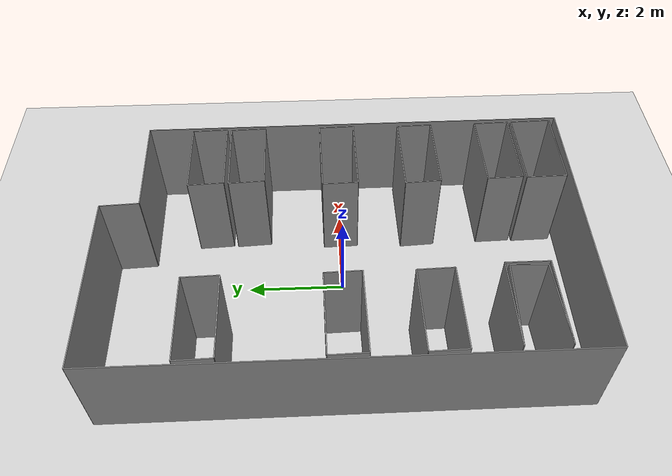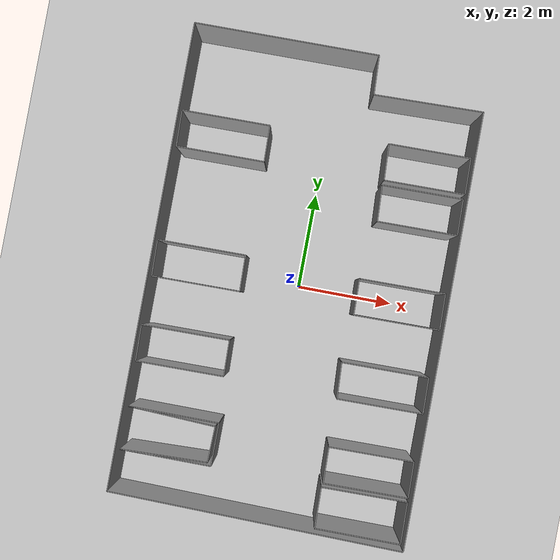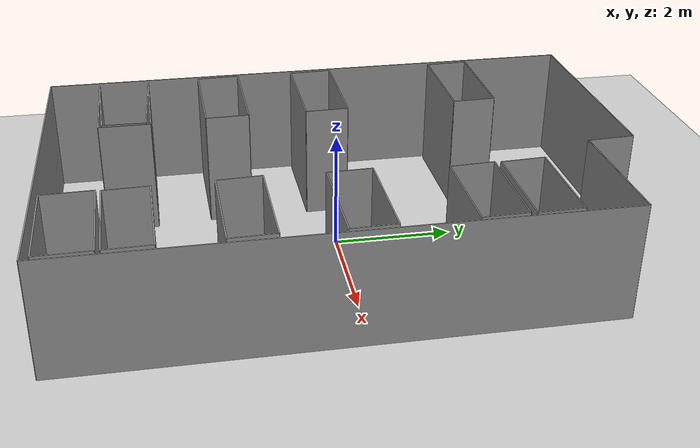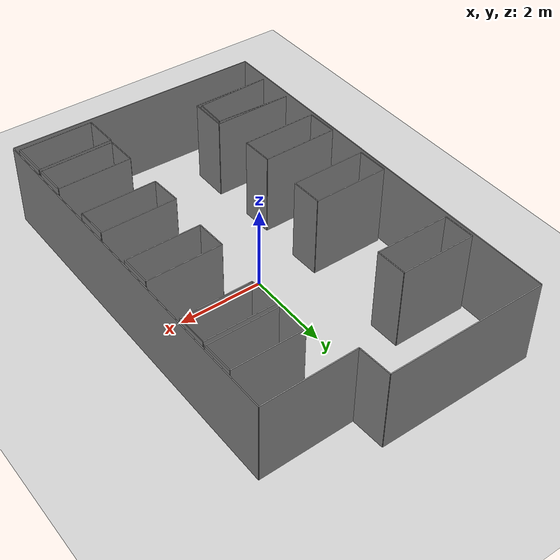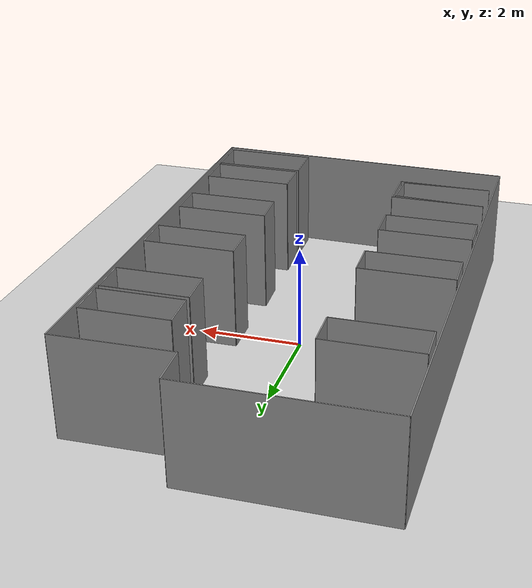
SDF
<sdf version="1.6">
 <world name="myagv_hand_drawn_world">
  <physics name="default_physics" default="0" type="ode">
   <max_step_size>0.001</max_step_size>
   <real_time_factor>1</real_time_factor>
   <real_time_update_rate>1000</real_time_update_rate>
   <ode><solver><iters>150</iters></solver></ode>
  </physics>
  <light type="directional" name="sun">
   <pose>0 0 10 0 0 0</pose>
   <diffuse>0.8 0.8 0.8 1</diffuse>
   <specular>0.2 0.2 0.2 1</specular>
   <attenuation>
    <range>1000</range>
    <constant>0.9</constant>
    <linear>0.01</linear>
    <quadratic>0.001</quadratic>
   </attenuation>
   <direction>-0.5 0.1 -0.9</direction>
  </light>
  <model name="ground_plane">
   <static>true</static>
   <link name="link">
    <collision name="collision">
     <geometry><plane><normal>0 0 1</normal><size>40 40</size></plane></geometry>
     <surface><friction><ode><mu>1.0</mu><mu2>1.0</mu2></ode></friction></surface>
    </collision>
    <visual name="visual">
     <geometry><plane><normal>0 0 1</normal><size>40 40</size></plane></geometry>
     <material><ambient>0.8 0.8 0.8 1</ambient><diffuse>0.8 0.8 0.8 1</diffuse></material>
    </visual>
   </link>
  </model>
  <model name="wall_0">
   <static>true</static>
   <pose>-2.030 -3.050 1.000 0 0 -0.0444</pose>
   <link name="link">
    <collision name="collision"><geometry><box><size>1.802 0.020 2.000</size></box></geometry></collision>
    <visual name="visual">
     <geometry><box><size>1.802 0.020 2.000</size></box></geometry>
     <material><ambient>0.6 0.6 0.6 1</ambient><diffuse>0.6 0.6 0.6 1</diffuse></material>
    </visual>
   </link>
  </model>
  <model name="wall_1">
   <static>true</static>
   <pose>-1.140 -3.460 1.000 0 0 -1.5978</pose>
   <link name="link">
    <collision name="collision"><geometry><box><size>0.740 0.020 2.000</size></box></geometry></collision>
    <visual name="visual">
     <geometry><box><size>0.740 0.020 2.000</size></box></geometry>
     <material><ambient>0.6 0.6 0.6 1</ambient><diffuse>0.6 0.6 0.6 1</diffuse></material>
    </visual>
   </link>
  </model>
  <model name="wall_2">
   <static>true</static>
   <pose>-2.040 -3.860 1.000 0 0 -3.1079</pose>
   <link name="link">
    <collision name="collision"><geometry><box><size>1.781 0.020 2.000</size></box></geometry></collision>
    <visual name="visual">
     <geometry><box><size>1.781 0.020 2.000</size></box></geometry>
     <material><ambient>0.6 0.6 0.6 1</ambient><diffuse>0.6 0.6 0.6 1</diffuse></material>
    </visual>
   </link>
  </model>
  <model name="wall_3">
   <static>true</static>
   <pose>-2.000 -3.890 1.000 0 0 0.0000</pose>
   <link name="link">
    <collision name="collision"><geometry><box><size>1.860 0.020 2.000</size></box></geometry></collision>
    <visual name="visual">
     <geometry><box><size>1.860 0.020 2.000</size></box></geometry>
     <material><ambient>0.6 0.6 0.6 1</ambient><diffuse>0.6 0.6 0.6 1</diffuse></material>
    </visual>
   </link>
  </model>
  <model name="wall_4">
   <static>true</static>
   <pose>-1.070 -3.450 1.000 0 0 1.5708</pose>
   <link name="link">
    <collision name="collision"><geometry><box><size>0.880 0.020 2.000</size></box></geometry></collision>
    <visual name="visual">
     <geometry><box><size>0.880 0.020 2.000</size></box></geometry>
     <material><ambient>0.6 0.6 0.6 1</ambient><diffuse>0.6 0.6 0.6 1</diffuse></material>
    </visual>
   </link>
  </model>
  <model name="wall_5">
   <static>true</static>
   <pose>-2.000 -3.010 1.000 0 0 3.1416</pose>
   <link name="link">
    <collision name="collision"><geometry><box><size>1.860 0.020 2.000</size></box></geometry></collision>
    <visual name="visual">
     <geometry><box><size>1.860 0.020 2.000</size></box></geometry>
     <material><ambient>0.6 0.6 0.6 1</ambient><diffuse>0.6 0.6 0.6 1</diffuse></material>
    </visual>
   </link>
  </model>
  <model name="wall_6">
   <static>true</static>
   <pose>1.890 4.100 1.000 0 0 -3.1148</pose>
   <link name="link">
    <collision name="collision"><geometry><box><size>2.241 0.020 2.000</size></box></geometry></collision>
    <visual name="visual">
     <geometry><box><size>2.241 0.020 2.000</size></box></geometry>
     <material><ambient>0.6 0.6 0.6 1</ambient><diffuse>0.6 0.6 0.6 1</diffuse></material>
    </visual>
   </link>
  </model>
  <model name="wall_7">
   <static>true</static>
   <pose>0.750 4.470 1.000 0 0 1.6208</pose>
   <link name="link">
    <collision name="collision"><geometry><box><size>0.801 0.020 2.000</size></box></geometry></collision>
    <visual name="visual">
     <geometry><box><size>0.801 0.020 2.000</size></box></geometry>
     <material><ambient>0.6 0.6 0.6 1</ambient><diffuse>0.6 0.6 0.6 1</diffuse></material>
    </visual>
   </link>
  </model>
  <model name="wall_8">
   <static>true</static>
   <pose>-1.160 4.850 1.000 0 0 -3.1310</pose>
   <link name="link">
    <collision name="collision"><geometry><box><size>3.780 0.020 2.000</size></box></geometry></collision>
    <visual name="visual">
     <geometry><box><size>3.780 0.020 2.000</size></box></geometry>
     <material><ambient>0.6 0.6 0.6 1</ambient><diffuse>0.6 0.6 0.6 1</diffuse></material>
    </visual>
   </link>
  </model>
  <model name="wall_9">
   <static>true</static>
   <pose>-3.040 0.030 1.000 0 0 -1.5687</pose>
   <link name="link">
    <collision name="collision"><geometry><box><size>9.600 0.020 2.000</size></box></geometry></collision>
    <visual name="visual">
     <geometry><box><size>9.600 0.020 2.000</size></box></geometry>
     <material><ambient>0.6 0.6 0.6 1</ambient><diffuse>0.6 0.6 0.6 1</diffuse></material>
    </visual>
   </link>
  </model>
  <model name="wall_10">
   <static>true</static>
   <pose>0.010 -4.820 1.000 0 0 -0.0164</pose>
   <link name="link">
    <collision name="collision"><geometry><box><size>6.081 0.020 2.000</size></box></geometry></collision>
    <visual name="visual">
     <geometry><box><size>6.081 0.020 2.000</size></box></geometry>
     <material><ambient>0.6 0.6 0.6 1</ambient><diffuse>0.6 0.6 0.6 1</diffuse></material>
    </visual>
   </link>
  </model>
  <model name="wall_11">
   <static>true</static>
   <pose>3.030 -0.370 1.000 0 0 1.5752</pose>
   <link name="link">
    <collision name="collision"><geometry><box><size>9.000 0.020 2.000</size></box></geometry></collision>
    <visual name="visual">
     <geometry><box><size>9.000 0.020 2.000</size></box></geometry>
     <material><ambient>0.6 0.6 0.6 1</ambient><diffuse>0.6 0.6 0.6 1</diffuse></material>
    </visual>
   </link>
  </model>
  <model name="wall_12">
   <static>true</static>
   <pose>2.070 -3.880 1.000 0 0 0.0114</pose>
   <link name="link">
    <collision name="collision"><geometry><box><size>1.760 0.020 2.000</size></box></geometry></collision>
    <visual name="visual">
     <geometry><box><size>1.760 0.020 2.000</size></box></geometry>
     <material><ambient>0.6 0.6 0.6 1</ambient><diffuse>0.6 0.6 0.6 1</diffuse></material>
    </visual>
   </link>
  </model>
  <model name="wall_13">
   <static>true</static>
   <pose>2.960 -4.300 1.000 0 0 -1.5475</pose>
   <link name="link">
    <collision name="collision"><geometry><box><size>0.860 0.020 2.000</size></box></geometry></collision>
    <visual name="visual">
     <geometry><box><size>0.860 0.020 2.000</size></box></geometry>
     <material><ambient>0.6 0.6 0.6 1</ambient><diffuse>0.6 0.6 0.6 1</diffuse></material>
    </visual>
   </link>
  </model>
  <model name="wall_14">
   <static>true</static>
   <pose>2.090 -4.730 1.000 0 0 3.1416</pose>
   <link name="link">
    <collision name="collision"><geometry><box><size>1.760 0.020 2.000</size></box></geometry></collision>
    <visual name="visual">
     <geometry><box><size>1.760 0.020 2.000</size></box></geometry>
     <material><ambient>0.6 0.6 0.6 1</ambient><diffuse>0.6 0.6 0.6 1</diffuse></material>
    </visual>
   </link>
  </model>
  <model name="wall_15">
   <static>true</static>
   <pose>1.200 -4.310 1.000 0 0 1.5946</pose>
   <link name="link">
    <collision name="collision"><geometry><box><size>0.840 0.020 2.000</size></box></geometry></collision>
    <visual name="visual">
     <geometry><box><size>0.840 0.020 2.000</size></box></geometry>
     <material><ambient>0.6 0.6 0.6 1</ambient><diffuse>0.6 0.6 0.6 1</diffuse></material>
    </visual>
   </link>
  </model>
  <model name="wall_16">
   <static>true</static>
   <pose>2.060 -3.060 1.000 0 0 0.0115</pose>
   <link name="link">
    <collision name="collision"><geometry><box><size>1.740 0.020 2.000</size></box></geometry></collision>
    <visual name="visual">
     <geometry><box><size>1.740 0.020 2.000</size></box></geometry>
     <material><ambient>0.6 0.6 0.6 1</ambient><diffuse>0.6 0.6 0.6 1</diffuse></material>
    </visual>
   </link>
  </model>
  <model name="wall_17">
   <static>true</static>
   <pose>2.940 -3.420 1.000 0 0 -1.5438</pose>
   <link name="link">
    <collision name="collision"><geometry><box><size>0.740 0.020 2.000</size></box></geometry></collision>
    <visual name="visual">
     <geometry><box><size>0.740 0.020 2.000</size></box></geometry>
     <material><ambient>0.6 0.6 0.6 1</ambient><diffuse>0.6 0.6 0.6 1</diffuse></material>
    </visual>
   </link>
  </model>
  <model name="wall_18">
   <static>true</static>
   <pose>2.080 -3.800 1.000 0 0 -3.1301</pose>
   <link name="link">
    <collision name="collision"><geometry><box><size>1.740 0.020 2.000</size></box></geometry></collision>
    <visual name="visual">
     <geometry><box><size>1.740 0.020 2.000</size></box></geometry>
     <material><ambient>0.6 0.6 0.6 1</ambient><diffuse>0.6 0.6 0.6 1</diffuse></material>
    </visual>
   </link>
  </model>
  <model name="wall_19">
   <static>true</static>
   <pose>1.200 -3.440 1.000 0 0 1.5978</pose>
   <link name="link">
    <collision name="collision"><geometry><box><size>0.740 0.020 2.000</size></box></geometry></collision>
    <visual name="visual">
     <geometry><box><size>0.740 0.020 2.000</size></box></geometry>
     <material><ambient>0.6 0.6 0.6 1</ambient><diffuse>0.6 0.6 0.6 1</diffuse></material>
    </visual>
   </link>
  </model>
  <model name="wall_20">
   <static>true</static>
   <pose>2.020 -1.340 1.000 0 0 0.0112</pose>
   <link name="link">
    <collision name="collision"><geometry><box><size>1.780 0.020 2.000</size></box></geometry></collision>
    <visual name="visual">
     <geometry><box><size>1.780 0.020 2.000</size></box></geometry>
     <material><ambient>0.6 0.6 0.6 1</ambient><diffuse>0.6 0.6 0.6 1</diffuse></material>
    </visual>
   </link>
  </model>
  <model name="wall_21">
   <static>true</static>
   <pose>2.920 -1.700 1.000 0 0 -1.5438</pose>
   <link name="link">
    <collision name="collision"><geometry><box><size>0.740 0.020 2.000</size></box></geometry></collision>
    <visual name="visual">
     <geometry><box><size>0.740 0.020 2.000</size></box></geometry>
     <material><ambient>0.6 0.6 0.6 1</ambient><diffuse>0.6 0.6 0.6 1</diffuse></material>
    </visual>
   </link>
  </model>
  <model name="wall_22">
   <static>true</static>
   <pose>2.050 -2.080 1.000 0 0 -3.1302</pose>
   <link name="link">
    <collision name="collision"><geometry><box><size>1.760 0.020 2.000</size></box></geometry></collision>
    <visual name="visual">
     <geometry><box><size>1.760 0.020 2.000</size></box></geometry>
     <material><ambient>0.6 0.6 0.6 1</ambient><diffuse>0.6 0.6 0.6 1</diffuse></material>
    </visual>
   </link>
  </model>
  <model name="wall_23">
   <static>true</static>
   <pose>1.150 -1.720 1.000 0 0 1.6248</pose>
   <link name="link">
    <collision name="collision"><geometry><box><size>0.741 0.020 2.000</size></box></geometry></collision>
    <visual name="visual">
     <geometry><box><size>0.741 0.020 2.000</size></box></geometry>
     <material><ambient>0.6 0.6 0.6 1</ambient><diffuse>0.6 0.6 0.6 1</diffuse></material>
    </visual>
   </link>
  </model>
  <model name="wall_24">
   <static>true</static>
   <pose>-2.070 -1.340 1.000 0 0 0.0111</pose>
   <link name="link">
    <collision name="collision"><geometry><box><size>1.800 0.020 2.000</size></box></geometry></collision>
    <visual name="visual">
     <geometry><box><size>1.800 0.020 2.000</size></box></geometry>
     <material><ambient>0.6 0.6 0.6 1</ambient><diffuse>0.6 0.6 0.6 1</diffuse></material>
    </visual>
   </link>
  </model>
  <model name="wall_25">
   <static>true</static>
   <pose>-1.160 -1.700 1.000 0 0 -1.5438</pose>
   <link name="link">
    <collision name="collision"><geometry><box><size>0.740 0.020 2.000</size></box></geometry></collision>
    <visual name="visual">
     <geometry><box><size>0.740 0.020 2.000</size></box></geometry>
     <material><ambient>0.6 0.6 0.6 1</ambient><diffuse>0.6 0.6 0.6 1</diffuse></material>
    </visual>
   </link>
  </model>
  <model name="wall_26">
   <static>true</static>
   <pose>-2.050 -2.080 1.000 0 0 -3.1305</pose>
   <link name="link">
    <collision name="collision"><geometry><box><size>1.800 0.020 2.000</size></box></geometry></collision>
    <visual name="visual">
     <geometry><box><size>1.800 0.020 2.000</size></box></geometry>
     <material><ambient>0.6 0.6 0.6 1</ambient><diffuse>0.6 0.6 0.6 1</diffuse></material>
    </visual>
   </link>
  </model>
  <model name="wall_27">
   <static>true</static>
   <pose>-2.960 -1.720 1.000 0 0 1.5978</pose>
   <link name="link">
    <collision name="collision"><geometry><box><size>0.740 0.020 2.000</size></box></geometry></collision>
    <visual name="visual">
     <geometry><box><size>0.740 0.020 2.000</size></box></geometry>
     <material><ambient>0.6 0.6 0.6 1</ambient><diffuse>0.6 0.6 0.6 1</diffuse></material>
    </visual>
   </link>
  </model>
  <model name="wall_28">
   <static>true</static>
   <pose>2.050 0.380 1.000 0 0 0.0114</pose>
   <link name="link">
    <collision name="collision"><geometry><box><size>1.760 0.020 2.000</size></box></geometry></collision>
    <visual name="visual">
     <geometry><box><size>1.760 0.020 2.000</size></box></geometry>
     <material><ambient>0.6 0.6 0.6 1</ambient><diffuse>0.6 0.6 0.6 1</diffuse></material>
    </visual>
   </link>
  </model>
  <model name="wall_29">
   <static>true</static>
   <pose>2.940 0.020 1.000 0 0 -1.5438</pose>
   <link name="link">
    <collision name="collision"><geometry><box><size>0.740 0.020 2.000</size></box></geometry></collision>
    <visual name="visual">
     <geometry><box><size>0.740 0.020 2.000</size></box></geometry>
     <material><ambient>0.6 0.6 0.6 1</ambient><diffuse>0.6 0.6 0.6 1</diffuse></material>
    </visual>
   </link>
  </model>
  <model name="wall_30">
   <static>true</static>
   <pose>2.070 -0.360 1.000 0 0 -3.1302</pose>
   <link name="link">
    <collision name="collision"><geometry><box><size>1.760 0.020 2.000</size></box></geometry></collision>
    <visual name="visual">
     <geometry><box><size>1.760 0.020 2.000</size></box></geometry>
     <material><ambient>0.6 0.6 0.6 1</ambient><diffuse>0.6 0.6 0.6 1</diffuse></material>
    </visual>
   </link>
  </model>
  <model name="wall_31">
   <static>true</static>
   <pose>1.180 -0.000 1.000 0 0 1.5978</pose>
   <link name="link">
    <collision name="collision"><geometry><box><size>0.740 0.020 2.000</size></box></geometry></collision>
    <visual name="visual">
     <geometry><box><size>0.740 0.020 2.000</size></box></geometry>
     <material><ambient>0.6 0.6 0.6 1</ambient><diffuse>0.6 0.6 0.6 1</diffuse></material>
    </visual>
   </link>
  </model>
  <model name="wall_32">
   <static>true</static>
   <pose>-2.070 0.400 1.000 0 0 0.0111</pose>
   <link name="link">
    <collision name="collision"><geometry><box><size>1.800 0.020 2.000</size></box></geometry></collision>
    <visual name="visual">
     <geometry><box><size>1.800 0.020 2.000</size></box></geometry>
     <material><ambient>0.6 0.6 0.6 1</ambient><diffuse>0.6 0.6 0.6 1</diffuse></material>
    </visual>
   </link>
  </model>
  <model name="wall_33">
   <static>true</static>
   <pose>-1.160 0.040 1.000 0 0 -1.5438</pose>
   <link name="link">
    <collision name="collision"><geometry><box><size>0.740 0.020 2.000</size></box></geometry></collision>
    <visual name="visual">
     <geometry><box><size>0.740 0.020 2.000</size></box></geometry>
     <material><ambient>0.6 0.6 0.6 1</ambient><diffuse>0.6 0.6 0.6 1</diffuse></material>
    </visual>
   </link>
  </model>
  <model name="wall_34">
   <static>true</static>
   <pose>-2.050 -0.340 1.000 0 0 -3.1305</pose>
   <link name="link">
    <collision name="collision"><geometry><box><size>1.800 0.020 2.000</size></box></geometry></collision>
    <visual name="visual">
     <geometry><box><size>1.800 0.020 2.000</size></box></geometry>
     <material><ambient>0.6 0.6 0.6 1</ambient><diffuse>0.6 0.6 0.6 1</diffuse></material>
    </visual>
   </link>
  </model>
  <model name="wall_35">
   <static>true</static>
   <pose>-2.960 0.020 1.000 0 0 1.5978</pose>
   <link name="link">
    <collision name="collision"><geometry><box><size>0.740 0.020 2.000</size></box></geometry></collision>
    <visual name="visual">
     <geometry><box><size>0.740 0.020 2.000</size></box></geometry>
     <material><ambient>0.6 0.6 0.6 1</ambient><diffuse>0.6 0.6 0.6 1</diffuse></material>
    </visual>
   </link>
  </model>
  <model name="wall_36">
   <static>true</static>
   <pose>2.100 2.320 1.000 0 0 0.0120</pose>
   <link name="link">
    <collision name="collision"><geometry><box><size>1.660 0.020 2.000</size></box></geometry></collision>
    <visual name="visual">
     <geometry><box><size>1.660 0.020 2.000</size></box></geometry>
     <material><ambient>0.6 0.6 0.6 1</ambient><diffuse>0.6 0.6 0.6 1</diffuse></material>
    </visual>
   </link>
  </model>
  <model name="wall_37">
   <static>true</static>
   <pose>2.940 1.960 1.000 0 0 -1.5438</pose>
   <link name="link">
    <collision name="collision"><geometry><box><size>0.740 0.020 2.000</size></box></geometry></collision>
    <visual name="visual">
     <geometry><box><size>0.740 0.020 2.000</size></box></geometry>
     <material><ambient>0.6 0.6 0.6 1</ambient><diffuse>0.6 0.6 0.6 1</diffuse></material>
    </visual>
   </link>
  </model>
  <model name="wall_38">
   <static>true</static>
   <pose>2.130 1.580 1.000 0 0 -3.1294</pose>
   <link name="link">
    <collision name="collision"><geometry><box><size>1.640 0.020 2.000</size></box></geometry></collision>
    <visual name="visual">
     <geometry><box><size>1.640 0.020 2.000</size></box></geometry>
     <material><ambient>0.6 0.6 0.6 1</ambient><diffuse>0.6 0.6 0.6 1</diffuse></material>
    </visual>
   </link>
  </model>
  <model name="wall_39">
   <static>true</static>
   <pose>1.290 1.940 1.000 0 0 1.6248</pose>
   <link name="link">
    <collision name="collision"><geometry><box><size>0.741 0.020 2.000</size></box></geometry></collision>
    <visual name="visual">
     <geometry><box><size>0.741 0.020 2.000</size></box></geometry>
     <material><ambient>0.6 0.6 0.6 1</ambient><diffuse>0.6 0.6 0.6 1</diffuse></material>
    </visual>
   </link>
  </model>
  <model name="wall_40">
   <static>true</static>
   <pose>-2.070 3.060 1.000 0 0 0.0111</pose>
   <link name="link">
    <collision name="collision"><geometry><box><size>1.800 0.020 2.000</size></box></geometry></collision>
    <visual name="visual">
     <geometry><box><size>1.800 0.020 2.000</size></box></geometry>
     <material><ambient>0.6 0.6 0.6 1</ambient><diffuse>0.6 0.6 0.6 1</diffuse></material>
    </visual>
   </link>
  </model>
  <model name="wall_41">
   <static>true</static>
   <pose>-1.160 2.700 1.000 0 0 -1.5438</pose>
   <link name="link">
    <collision name="collision"><geometry><box><size>0.740 0.020 2.000</size></box></geometry></collision>
    <visual name="visual">
     <geometry><box><size>0.740 0.020 2.000</size></box></geometry>
     <material><ambient>0.6 0.6 0.6 1</ambient><diffuse>0.6 0.6 0.6 1</diffuse></material>
    </visual>
   </link>
  </model>
  <model name="wall_42">
   <static>true</static>
   <pose>-2.050 2.320 1.000 0 0 -3.1305</pose>
   <link name="link">
    <collision name="collision"><geometry><box><size>1.800 0.020 2.000</size></box></geometry></collision>
    <visual name="visual">
     <geometry><box><size>1.800 0.020 2.000</size></box></geometry>
     <material><ambient>0.6 0.6 0.6 1</ambient><diffuse>0.6 0.6 0.6 1</diffuse></material>
    </visual>
   </link>
  </model>
  <model name="wall_43">
   <static>true</static>
   <pose>-2.960 2.680 1.000 0 0 1.5978</pose>
   <link name="link">
    <collision name="collision"><geometry><box><size>0.740 0.020 2.000</size></box></geometry></collision>
    <visual name="visual">
     <geometry><box><size>0.740 0.020 2.000</size></box></geometry>
     <material><ambient>0.6 0.6 0.6 1</ambient><diffuse>0.6 0.6 0.6 1</diffuse></material>
    </visual>
   </link>
  </model>
  <model name="wall_44">
   <static>true</static>
   <pose>2.090 3.160 1.000 0 0 0.0119</pose>
   <link name="link">
    <collision name="collision"><geometry><box><size>1.680 0.020 2.000</size></box></geometry></collision>
    <visual name="visual">
     <geometry><box><size>1.680 0.020 2.000</size></box></geometry>
     <material><ambient>0.6 0.6 0.6 1</ambient><diffuse>0.6 0.6 0.6 1</diffuse></material>
    </visual>
   </link>
  </model>
  <model name="wall_45">
   <static>true</static>
   <pose>2.940 2.800 1.000 0 0 -1.5438</pose>
   <link name="link">
    <collision name="collision"><geometry><box><size>0.740 0.020 2.000</size></box></geometry></collision>
    <visual name="visual">
     <geometry><box><size>0.740 0.020 2.000</size></box></geometry>
     <material><ambient>0.6 0.6 0.6 1</ambient><diffuse>0.6 0.6 0.6 1</diffuse></material>
    </visual>
   </link>
  </model>
  <model name="wall_46">
   <static>true</static>
   <pose>2.120 2.420 1.000 0 0 -3.1295</pose>
   <link name="link">
    <collision name="collision"><geometry><box><size>1.660 0.020 2.000</size></box></geometry></collision>
    <visual name="visual">
     <geometry><box><size>1.660 0.020 2.000</size></box></geometry>
     <material><ambient>0.6 0.6 0.6 1</ambient><diffuse>0.6 0.6 0.6 1</diffuse></material>
    </visual>
   </link>
  </model>
  <model name="wall_47">
   <static>true</static>
   <pose>1.270 2.780 1.000 0 0 1.6248</pose>
   <link name="link">
    <collision name="collision"><geometry><box><size>0.741 0.020 2.000</size></box></geometry></collision>
    <visual name="visual">
     <geometry><box><size>0.741 0.020 2.000</size></box></geometry>
     <material><ambient>0.6 0.6 0.6 1</ambient><diffuse>0.6 0.6 0.6 1</diffuse></material>
    </visual>
   </link>
  </model>
 </world>
</sdf>
